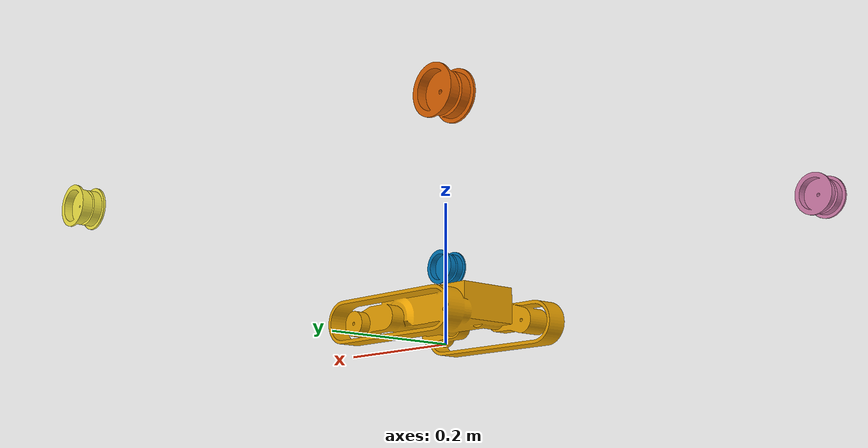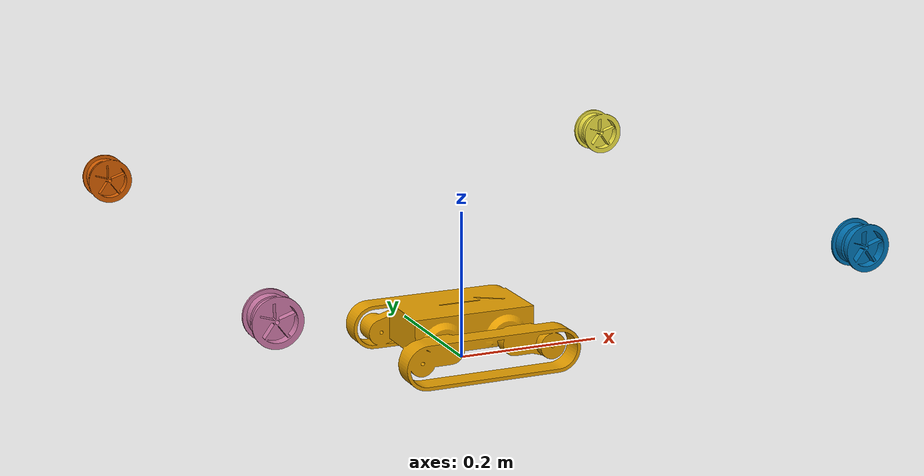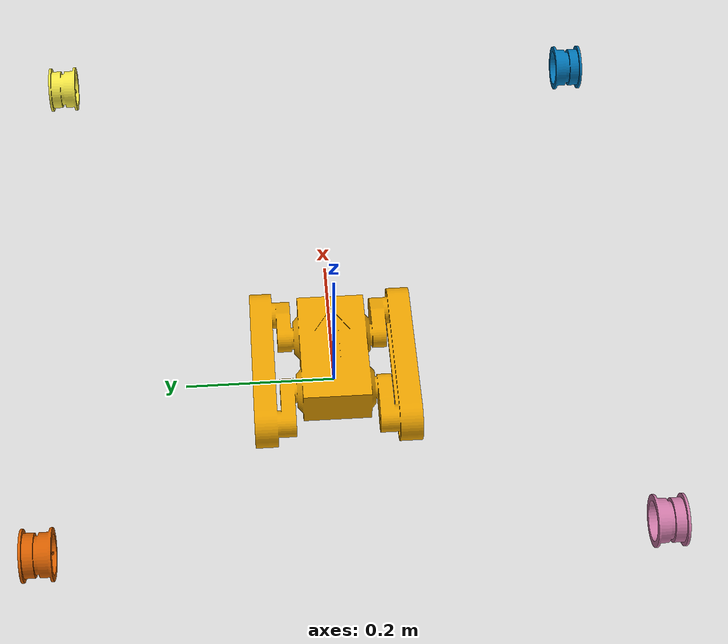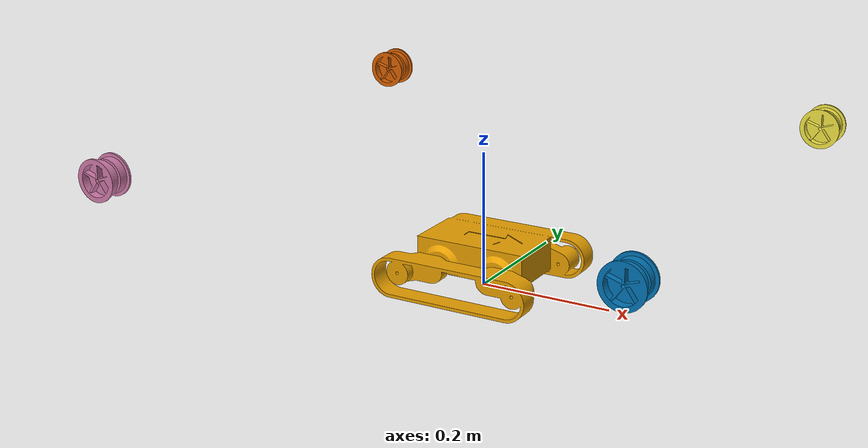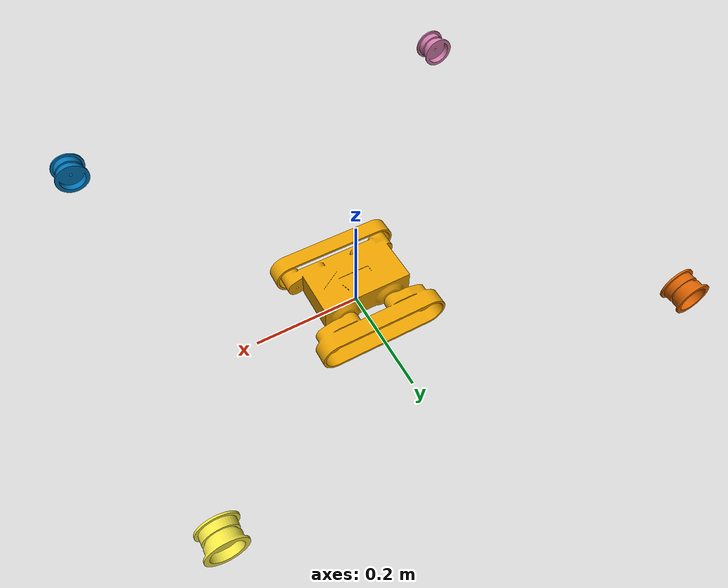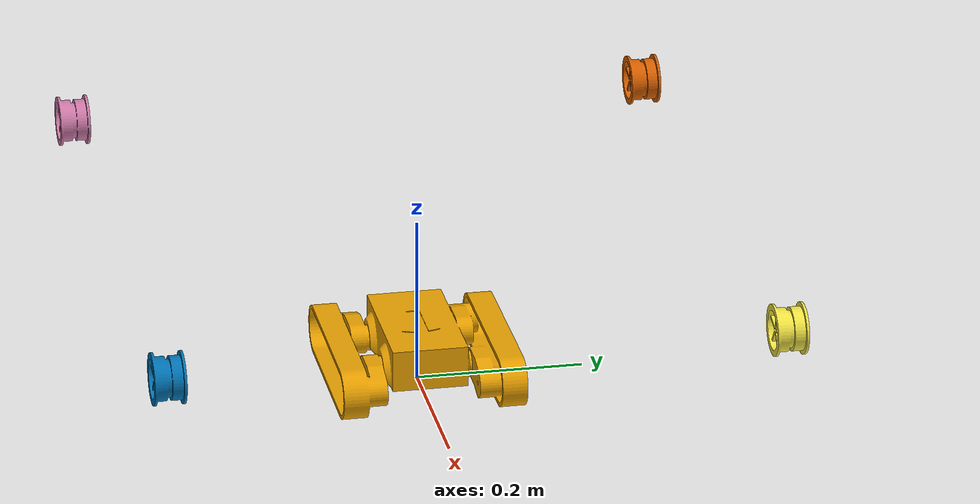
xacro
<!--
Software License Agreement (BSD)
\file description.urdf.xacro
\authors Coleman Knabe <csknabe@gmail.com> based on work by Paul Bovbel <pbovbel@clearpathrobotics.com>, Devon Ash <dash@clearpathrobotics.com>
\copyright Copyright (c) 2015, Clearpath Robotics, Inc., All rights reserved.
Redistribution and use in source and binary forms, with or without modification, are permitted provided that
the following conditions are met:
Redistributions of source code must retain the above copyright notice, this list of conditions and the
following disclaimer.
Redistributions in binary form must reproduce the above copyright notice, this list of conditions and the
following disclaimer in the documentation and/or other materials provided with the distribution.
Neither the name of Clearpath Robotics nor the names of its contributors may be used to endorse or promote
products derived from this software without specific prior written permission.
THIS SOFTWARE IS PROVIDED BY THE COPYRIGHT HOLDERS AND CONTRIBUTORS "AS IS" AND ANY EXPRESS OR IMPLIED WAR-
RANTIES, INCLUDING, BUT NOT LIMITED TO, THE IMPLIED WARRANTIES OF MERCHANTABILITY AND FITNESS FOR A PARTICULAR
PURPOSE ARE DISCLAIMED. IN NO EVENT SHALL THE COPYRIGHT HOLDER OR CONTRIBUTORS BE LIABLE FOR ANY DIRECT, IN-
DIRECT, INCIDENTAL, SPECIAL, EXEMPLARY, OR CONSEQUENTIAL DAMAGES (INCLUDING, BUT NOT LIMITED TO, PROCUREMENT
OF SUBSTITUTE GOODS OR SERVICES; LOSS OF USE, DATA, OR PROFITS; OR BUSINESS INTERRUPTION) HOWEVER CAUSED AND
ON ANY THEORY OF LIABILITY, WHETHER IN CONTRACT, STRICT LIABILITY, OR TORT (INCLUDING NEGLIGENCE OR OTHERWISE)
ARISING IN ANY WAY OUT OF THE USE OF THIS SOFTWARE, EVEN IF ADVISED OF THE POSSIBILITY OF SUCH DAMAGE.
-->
<?xml version="1.0"?>
<robot name="leonardo" xmlns:xacro="http://ros.org/wiki/xacro">

  <xacro:include filename="$(find turtle_description)/urdf/turtle.urdf.xacro" />
  <xacro:turtle_robot />

</robot>

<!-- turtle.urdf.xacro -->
<robot name="turtle_robot" xmlns:xacro="http://ros.org/wiki/xacro">

  <!-- Included URDF/XACRO Files -->
  <xacro:include filename="$(find turtle_description)/urdf/decorations.urdf.xacro" />
  <xacro:include filename="$(find turtle_description)/urdf/wheel.urdf.xacro" />

  <property name="M_PI" value="3.14159"/>

  <!-- Base Size -->
  <property name="base_x_size" value="0.9" />
  <property name="base_y_size" value="0.42" />
  <property name="base_z_size" value="0.4" />
  <property name="base_z_clearance" value="0.17" />

  <!-- Wheel Mounting Positions -->
  <xacro:property name="wheelbase" value="0.762" />
  <xacro:property name="track" value="0.711" />
  <xacro:property name="wheel_vertical_offset" value="0.0" />

  <!-- Wheel Properties -->
  <xacro:property name="wheel_length" value="0.127" />
  <xacro:property name="wheel_radius" value="0.203" />

  <xacro:macro name="turtle_robot">

    <!-- Base link is the center of the robot's base on ground -->
    <link name="base_link">
      <visual>
        <origin xyz="0 0 0" rpy="0 0 0" />
        <geometry>
          <mesh filename="package://turtle_description/meshes/rover_base_with_tread.stl" scale="0.001 0.001 0.001"/>
        </geometry>
      </visual>
      <collision> <!--FIXME-->
        <origin xyz="0 0 ${base_z_clearance/2+base_z_size/2}" rpy="0 0 0" />
        <geometry>
          <box size="${base_x_size} ${base_y_size} ${base_z_size-base_z_clearance}"/>
        </geometry>
      </collision>
    </link>

    <!-- Base footprint is on the ground under the robot -->
    <link name="base_footprint"/>

    <joint name="base_footprint_joint" type="fixed">
      <origin xyz="0 0 0" rpy="0 0 0" />
      <parent link="base_link" />
      <child link="base_footprint" />
    </joint>

    <!-- Interial link stores the robot's inertial information -->
    <link name="inertial_link"> <!--FIXME currently made up -->
      <inertial>
        <mass value="0.8" />
        <origin xyz="0.0 0.0 0.035" />
        <inertia ixx="0.1" ixy="-0.001" ixz="-0.001" iyy="0.3" iyz="-0.0001" izz="0.3" />
      </inertial>
    </link>

    <joint name="inertial_joint" type="fixed">
      <origin xyz="0 0 0" rpy="0 0 0" />
      <parent link="base_link" />
      <child link="inertial_link" />
    </joint>

    <!-- turtle wheel macros -->
    <xacro:turtle_wheel wheel_prefix="front_left">
      <origin xyz="${wheelbase/2} ${track/2} ${wheel_radius}" rpy="0 0 0" />
    </xacro:turtle_wheel>
    <xacro:turtle_wheel wheel_prefix="front_right">
      <origin xyz="${wheelbase/2} ${-track/2} ${wheel_radius}" rpy="0 0 0" />
    </xacro:turtle_wheel>
    <xacro:turtle_wheel wheel_prefix="rear_left">
      <origin xyz="${-wheelbase/2} ${track/2} ${wheel_radius}" rpy="0 0 0" />
    </xacro:turtle_wheel>
    <xacro:turtle_wheel wheel_prefix="rear_right">
      <origin xyz="${-wheelbase/2} ${-track/2} ${wheel_radius}" rpy="0 0 0" />
    </xacro:turtle_wheel>

  </xacro:macro>
</robot>

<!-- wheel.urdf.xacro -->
<robot xmlns:xacro="http://ros.org/wiki/xacro" name="turtle_wheel">

	<xacro:macro name="turtle_wheel" params="wheel_prefix *joint_pose">
		<link name="${wheel_prefix}_wheel_link">
			<inertial> <!-- FIXME -->
				<mass value=".05" />
				<origin xyz="0 0 0" />
				<inertia  ixx="0.002" ixy="0" ixz="0" iyy="0.002" iyz="0" izz="0.004" />
			</inertial>
			<visual>
				<origin xyz="0 0 0" rpy="0 0 0" />
				<geometry>
					<mesh filename="package://turtle_description/meshes/rover_wheel.stl" scale="0.001 0.001 0.001" />
				</geometry>
			</visual>
			<collision>
				<origin xyz="0 0 0" rpy="${M_PI/2} 0 0" />
				<geometry>
					<cylinder length="${wheel_length}" radius="${wheel_radius}" />
				</geometry>
			</collision>
		</link>

		<gazebo reference="${wheel_prefix}_wheel_link">
			<mu1 value="1.0"/>
			<mu2 value="1.0"/>
			<kp value="10000000.0" />
			<kd value="1.0" />
			<fdir1 value="1 0 0"/>
		</gazebo>

		<joint name="${wheel_prefix}_wheel" type="continuous">
			<parent link="base_link"/>
			<child link="${wheel_prefix}_wheel_link"/>
			<xacro:insert_block name="joint_pose"/>
			<axis xyz="0 1 0" rpy="0 0 0" />
		</joint>

		<transmission name="${wheel_prefix}_wheel_trans" type="SimpleTransmission">
			<type>transmission_interface/SimpleTransmission</type>
			<actuator name="${wheel_prefix}_wheel_motor">
				<mechanicalReduction>1</mechanicalReduction>
			</actuator>
			<joint name="${wheel_prefix}_wheel">
				<hardwareInterface>VelocityJointInterface</hardwareInterface>
			</joint>
		</transmission>

	</xacro:macro>
</robot>
